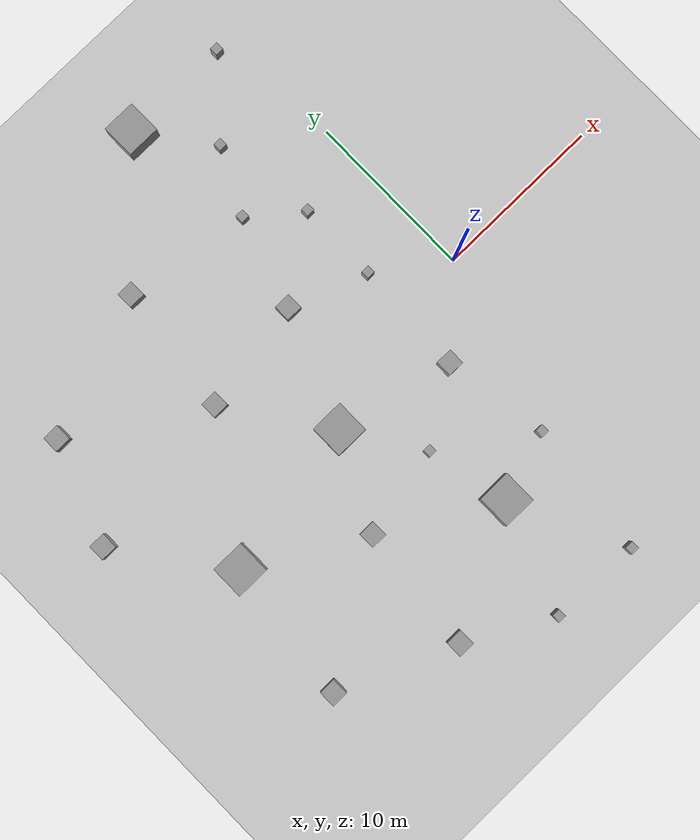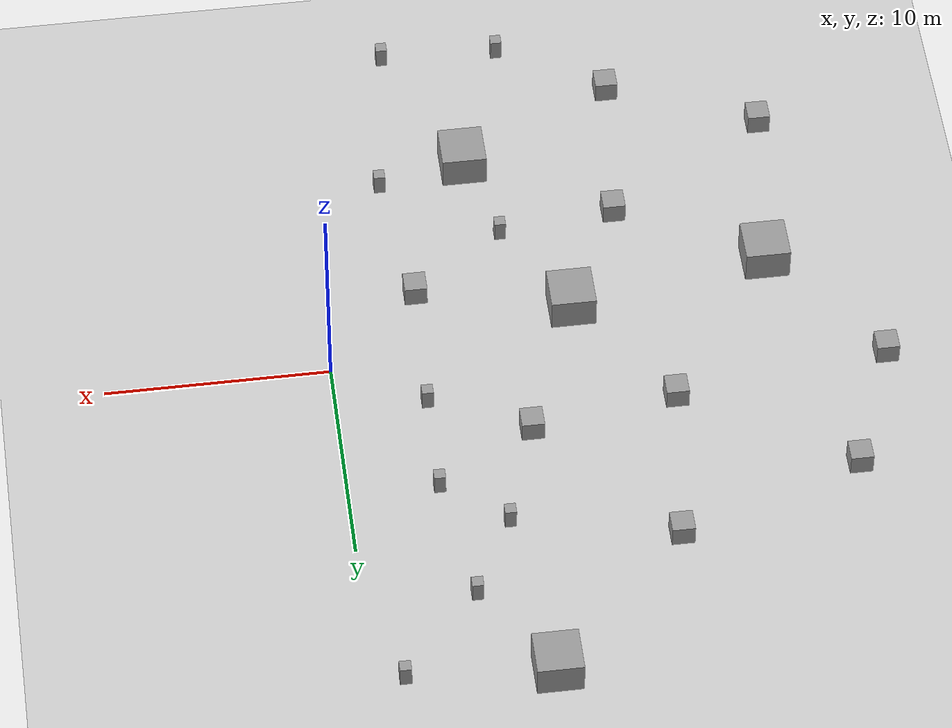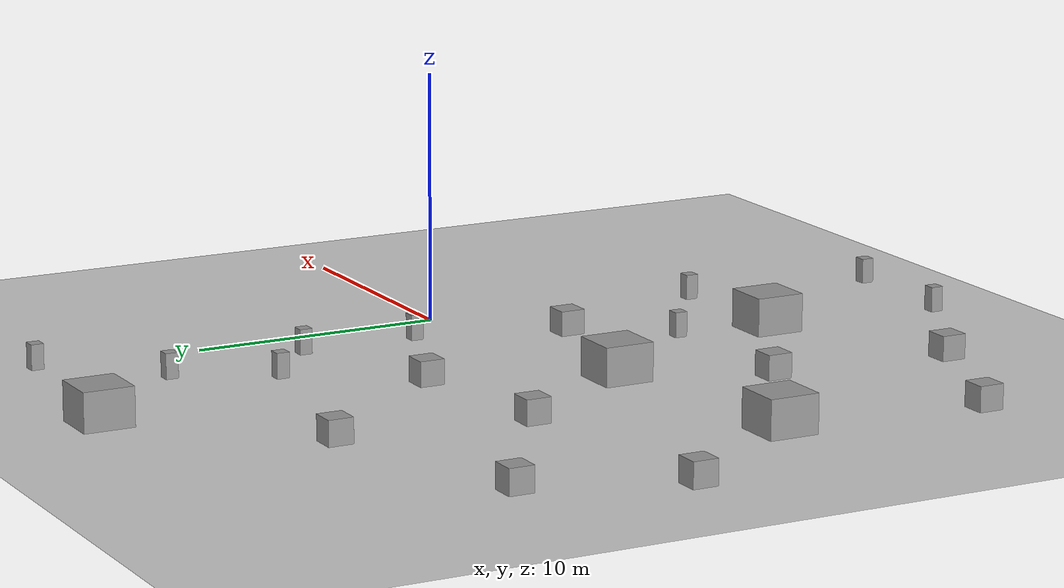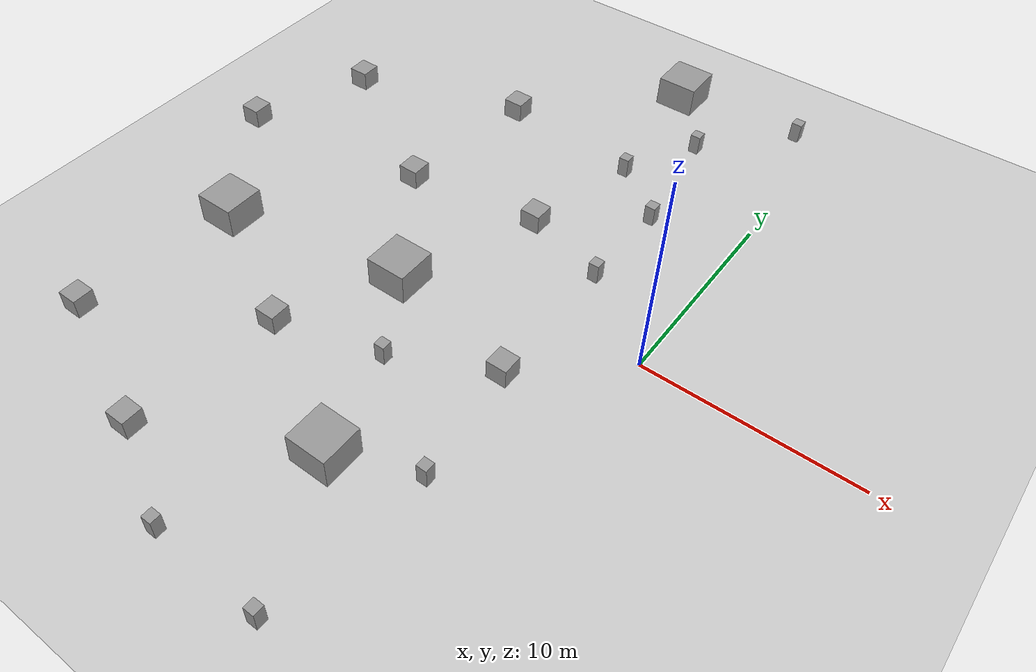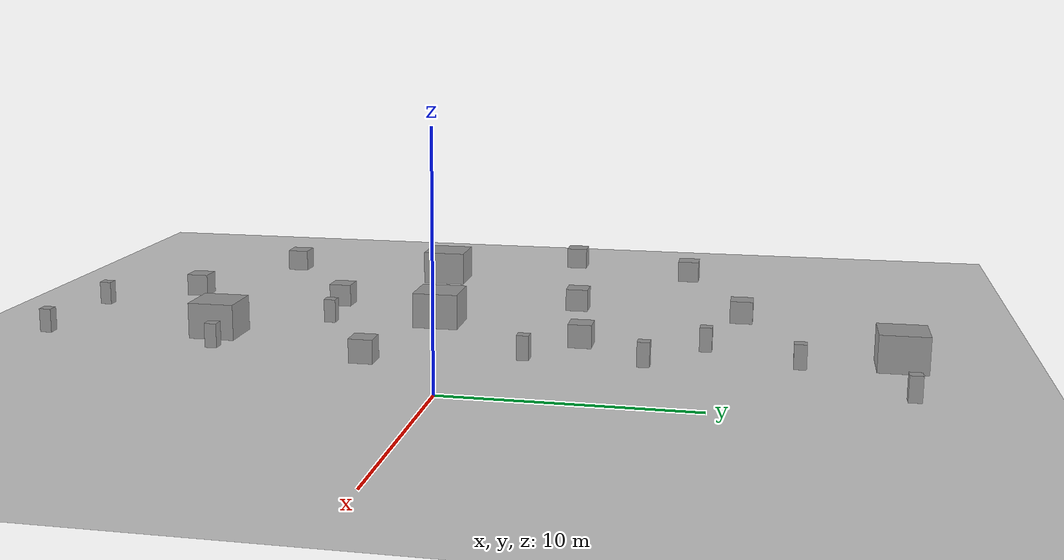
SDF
<sdf version="1.6">
 <world name="default">
  <model name="ground_plane">
   <static>1</static>
   <link name="link">
    <collision name="collision">
     <geometry><plane><normal>0 0 1</normal><size>100 100</size></plane></geometry>
     <surface>
      <contact><collide_bitmask>65535</collide_bitmask></contact>
      <friction><ode><mu>100</mu><mu2>50</mu2></ode></friction>
     </surface>
    </collision>
    <visual name="visual">
     <cast_shadows>0</cast_shadows>
     <geometry><plane><normal>0 0 1</normal><size>100 100</size></plane></geometry>
     <material>
      <script><uri>file://media/materials/scripts/gazebo.material</uri><name>Gazebo/Grey</name></script>
     </material>
    </visual>
   </link>
  </model>
  <model name="unit_box">
   <pose>-4.20212 -3.90314 0.5 0 -0 0</pose>
   <link name="link">
    <inertial>
     <mass>1</mass>
     <inertia>
      <ixx>0.166667</ixx>
      <ixy>0</ixy>
      <ixz>0</ixz>
      <iyy>0.166667</iyy>
      <iyz>0</iyz>
      <izz>0.166667</izz>
     </inertia>
    </inertial>
    <collision name="collision"><geometry><box><size>1 1 1</size></box></geometry></collision>
    <visual name="visual">
     <geometry><box><size>1 1 1</size></box></geometry>
     <material>
      <script><name>Gazebo/Grey</name><uri>file://media/materials/scripts/gazebo.material</uri></script>
     </material>
    </visual>
   </link>
  </model>
  <model name="unit_box_0">
   <pose>-8.36923 4.37364 0.5 -0 -0 -0</pose>
   <link name="link">
    <inertial>
     <mass>1</mass>
     <inertia>
      <ixx>0.166667</ixx>
      <ixy>0</ixy>
      <ixz>0</ixz>
      <iyy>0.166667</iyy>
      <iyz>0</iyz>
      <izz>0.166667</izz>
     </inertia>
    </inertial>
    <collision name="collision"><geometry><box><size>1 1 1</size></box></geometry></collision>
    <visual name="visual">
     <geometry><box><size>1 1 1</size></box></geometry>
     <material>
      <script><name>Gazebo/Grey</name><uri>file://media/materials/scripts/gazebo.material</uri></script>
     </material>
    </visual>
   </link>
  </model>
  <model name="0.5x0.5_cube_4_0">
   <link name="link">
    <inertial>
     <mass>1</mass>
     <inertia>
      <ixx>0.166667</ixx>
      <ixy>0</ixy>
      <ixz>0</ixz>
      <iyy>0.166667</iyy>
      <iyz>0</iyz>
      <izz>0.166667</izz>
     </inertia>
    </inertial>
    <visual name="visual">
     <geometry><box><size>0.5 0.5 1</size></box></geometry>
     <material>
      <script><name>Gazebo/Grey</name><uri>file://media/materials/scripts/gazebo.material</uri></script>
      <shader type="vertex"><normal_map>__default__</normal_map></shader>
      <ambient>0.3 0.3 0.3 1</ambient>
      <diffuse>0.7 0.7 0.7 1</diffuse>
      <specular>0.01 0.01 0.01 1</specular>
      <emissive>0 0 0 1</emissive>
     </material>
     <pose>0 0 0.5 0 -0 0</pose>
    </visual>
    <collision name="collision">
     <geometry><box><size>1 1 1</size></box></geometry>
     <surface>
      <friction>
       <ode><mu>1</mu><mu2>1</mu2><fdir1>0 0 0</fdir1><slip1>0</slip1><slip2>0</slip2></ode>
       <torsional>
        <coefficient>1</coefficient>
        <patch_radius>0</patch_radius>
        <surface_radius>0</surface_radius>
        <use_patch_radius>1</use_patch_radius>
        <ode><slip>0</slip></ode>
       </torsional>
      </friction>
      <bounce><restitution_coefficient>0</restitution_coefficient><threshold>1e+06</threshold></bounce>
      <contact>
       <collide_without_contact>0</collide_without_contact>
       <collide_without_contact_bitmask>1</collide_without_contact_bitmask>
       <collide_bitmask>1</collide_bitmask>
       <ode>
        <soft_cfm>0</soft_cfm>
        <soft_erp>0.2</soft_erp>
        <kp>1e+13</kp>
        <kd>1</kd>
        <max_vel>0.01</max_vel>
        <min_depth>0</min_depth>
       </ode>
       <bullet>
        <split_impulse>1</split_impulse>
        <split_impulse_penetration_threshold>-0.01</split_impulse_penetration_threshold>
        <soft_cfm>0</soft_cfm>
        <soft_erp>0.2</soft_erp>
        <kp>1e+13</kp>
        <kd>1</kd>
       </bullet>
      </contact>
     </surface>
    </collision>
   </link>
   <static>0</static>
   <pose>-3.97694 2.68308 0.5 0 -0 0</pose>
  </model>
  <model name="2x2_cube_0">
   <link name="link">
    <inertial>
     <mass>1</mass>
     <inertia>
      <ixx>0.166667</ixx>
      <ixy>0</ixy>
      <ixz>0</ixz>
      <iyy>0.166667</iyy>
      <iyz>0</iyz>
      <izz>0.166667</izz>
     </inertia>
    </inertial>
    <visual name="visual">
     <geometry><box><size>2 2 2</size></box></geometry>
     <material>
      <script><name>Gazebo/Grey</name><uri>file://media/materials/scripts/gazebo.material</uri></script>
      <shader type="vertex"><normal_map>__default__</normal_map></shader>
      <ambient>0.3 0.3 0.3 1</ambient>
      <diffuse>0.7 0.7 0.7 1</diffuse>
      <specular>0.01 0.01 0.01 1</specular>
      <emissive>0 0 0 1</emissive>
     </material>
    </visual>
    <collision name="collision">
     <geometry><box><size>1 1 1</size></box></geometry>
     <surface>
      <friction>
       <ode><mu>1</mu><mu2>1</mu2><fdir1>0 0 0</fdir1><slip1>0</slip1><slip2>0</slip2></ode>
       <torsional>
        <coefficient>1</coefficient>
        <patch_radius>0</patch_radius>
        <surface_radius>0</surface_radius>
        <use_patch_radius>1</use_patch_radius>
        <ode><slip>0</slip></ode>
       </torsional>
      </friction>
      <bounce><restitution_coefficient>0</restitution_coefficient><threshold>1e+06</threshold></bounce>
      <contact>
       <collide_without_contact>0</collide_without_contact>
       <collide_without_contact_bitmask>1</collide_without_contact_bitmask>
       <collide_bitmask>1</collide_bitmask>
       <ode>
        <soft_cfm>0</soft_cfm>
        <soft_erp>0.2</soft_erp>
        <kp>1e+13</kp>
        <kd>1</kd>
        <max_vel>0.01</max_vel>
        <min_depth>0</min_depth>
       </ode>
       <bullet>
        <split_impulse>1</split_impulse>
        <split_impulse_penetration_threshold>-0.01</split_impulse_penetration_threshold>
        <soft_cfm>0</soft_cfm>
        <soft_erp>0.2</soft_erp>
        <kp>1e+13</kp>
        <kd>1</kd>
       </bullet>
      </contact>
     </surface>
    </collision>
   </link>
   <static>0</static>
   <pose>-11.0166 -2.32935 0.5 0 -0 0</pose>
  </model>
  <model name="2x2_cube_1">
   <link name="link">
    <inertial>
     <mass>1</mass>
     <inertia>
      <ixx>0.166667</ixx>
      <ixy>0</ixy>
      <ixz>0</ixz>
      <iyy>0.166667</iyy>
      <iyz>0</iyz>
      <izz>0.166667</izz>
     </inertia>
    </inertial>
    <visual name="visual">
     <geometry><box><size>2 2 2</size></box></geometry>
     <material>
      <script><name>Gazebo/Grey</name><uri>file://media/materials/scripts/gazebo.material</uri></script>
      <shader type="vertex"><normal_map>__default__</normal_map></shader>
      <ambient>0.3 0.3 0.3 1</ambient>
      <diffuse>0.7 0.7 0.7 1</diffuse>
      <specular>0.01 0.01 0.01 1</specular>
      <emissive>0 0 0 1</emissive>
     </material>
    </visual>
    <collision name="collision">
     <geometry><box><size>1 1 1</size></box></geometry>
     <surface>
      <friction>
       <ode><mu>1</mu><mu2>1</mu2><fdir1>0 0 0</fdir1><slip1>0</slip1><slip2>0</slip2></ode>
       <torsional>
        <coefficient>1</coefficient>
        <patch_radius>0</patch_radius>
        <surface_radius>0</surface_radius>
        <use_patch_radius>1</use_patch_radius>
        <ode><slip>0</slip></ode>
       </torsional>
      </friction>
      <bounce><restitution_coefficient>0</restitution_coefficient><threshold>1e+06</threshold></bounce>
      <contact>
       <collide_without_contact>0</collide_without_contact>
       <collide_without_contact_bitmask>1</collide_without_contact_bitmask>
       <collide_bitmask>1</collide_bitmask>
       <ode>
        <soft_cfm>0</soft_cfm>
        <soft_erp>0.2</soft_erp>
        <kp>1e+13</kp>
        <kd>1</kd>
        <max_vel>0.01</max_vel>
        <min_depth>0</min_depth>
       </ode>
       <bullet>
        <split_impulse>1</split_impulse>
        <split_impulse_penetration_threshold>-0.01</split_impulse_penetration_threshold>
        <soft_cfm>0</soft_cfm>
        <soft_erp>0.2</soft_erp>
        <kp>1e+13</kp>
        <kd>1</kd>
       </bullet>
      </contact>
     </surface>
    </collision>
   </link>
   <static>0</static>
   <pose>-7.2358 -11.2675 0.5 0 -0 0</pose>
  </model>
  <model name="0.5x0.5_cube_4_1">
   <link name="link">
    <inertial>
     <mass>1</mass>
     <inertia>
      <ixx>0.166667</ixx>
      <ixy>0</ixy>
      <ixz>0</ixz>
      <iyy>0.166667</iyy>
      <iyz>0</iyz>
      <izz>0.166667</izz>
     </inertia>
    </inertial>
    <visual name="visual">
     <geometry><box><size>0.5 0.5 1</size></box></geometry>
     <material>
      <script><name>Gazebo/Grey</name><uri>file://media/materials/scripts/gazebo.material</uri></script>
      <shader type="vertex"><normal_map>__default__</normal_map></shader>
      <ambient>0.3 0.3 0.3 1</ambient>
      <diffuse>0.7 0.7 0.7 1</diffuse>
      <specular>0.01 0.01 0.01 1</specular>
      <emissive>0 0 0 1</emissive>
     </material>
     <pose>0 0 0.5 0 -0 0</pose>
    </visual>
    <collision name="collision">
     <geometry><box><size>1 1 1</size></box></geometry>
     <surface>
      <friction>
       <ode><mu>1</mu><mu2>1</mu2><fdir1>0 0 0</fdir1><slip1>0</slip1><slip2>0</slip2></ode>
       <torsional>
        <coefficient>1</coefficient>
        <patch_radius>0</patch_radius>
        <surface_radius>0</surface_radius>
        <use_patch_radius>1</use_patch_radius>
        <ode><slip>0</slip></ode>
       </torsional>
      </friction>
      <bounce><restitution_coefficient>0</restitution_coefficient><threshold>1e+06</threshold></bounce>
      <contact>
       <collide_without_contact>0</collide_without_contact>
       <collide_without_contact_bitmask>1</collide_without_contact_bitmask>
       <collide_bitmask>1</collide_bitmask>
       <ode>
        <soft_cfm>0</soft_cfm>
        <soft_erp>0.2</soft_erp>
        <kp>1e+13</kp>
        <kd>1</kd>
        <max_vel>0.01</max_vel>
        <min_depth>0</min_depth>
       </ode>
       <bullet>
        <split_impulse>1</split_impulse>
        <split_impulse_penetration_threshold>-0.01</split_impulse_penetration_threshold>
        <soft_cfm>0</soft_cfm>
        <soft_erp>0.2</soft_erp>
        <kp>1e+13</kp>
        <kd>1</kd>
       </bullet>
      </contact>
     </surface>
    </collision>
   </link>
   <static>0</static>
   <pose>-4.25791 -17.7398 0.5 0 -0 0</pose>
  </model>
  <model name="0.5x0.5_cube_4_2">
   <link name="link">
    <inertial>
     <mass>1</mass>
     <inertia>
      <ixx>0.166667</ixx>
      <ixy>0</ixy>
      <ixz>0</ixz>
      <iyy>0.166667</iyy>
      <iyz>0</iyz>
      <izz>0.166667</izz>
     </inertia>
    </inertial>
    <visual name="visual">
     <geometry><box><size>0.5 0.5 1</size></box></geometry>
     <material>
      <script><name>Gazebo/Grey</name><uri>file://media/materials/scripts/gazebo.material</uri></script>
      <shader type="vertex"><normal_map>__default__</normal_map></shader>
      <ambient>0.3 0.3 0.3 1</ambient>
      <diffuse>0.7 0.7 0.7 1</diffuse>
      <specular>0.01 0.01 0.01 1</specular>
      <emissive>0 0 0 1</emissive>
     </material>
     <pose>0 0 0.5 0 -0 0</pose>
    </visual>
    <collision name="collision">
     <geometry><box><size>1 1 1</size></box></geometry>
     <surface>
      <friction>
       <ode><mu>1</mu><mu2>1</mu2><fdir1>0 0 0</fdir1><slip1>0</slip1><slip2>0</slip2></ode>
       <torsional>
        <coefficient>1</coefficient>
        <patch_radius>0</patch_radius>
        <surface_radius>0</surface_radius>
        <use_patch_radius>1</use_patch_radius>
        <ode><slip>0</slip></ode>
       </torsional>
      </friction>
      <bounce><restitution_coefficient>0</restitution_coefficient><threshold>1e+06</threshold></bounce>
      <contact>
       <collide_without_contact>0</collide_without_contact>
       <collide_without_contact_bitmask>1</collide_without_contact_bitmask>
       <collide_bitmask>1</collide_bitmask>
       <ode>
        <soft_cfm>0</soft_cfm>
        <soft_erp>0.2</soft_erp>
        <kp>1e+13</kp>
        <kd>1</kd>
        <max_vel>0.01</max_vel>
        <min_depth>0</min_depth>
       </ode>
       <bullet>
        <split_impulse>1</split_impulse>
        <split_impulse_penetration_threshold>-0.01</split_impulse_penetration_threshold>
        <soft_cfm>0</soft_cfm>
        <soft_erp>0.2</soft_erp>
        <kp>1e+13</kp>
        <kd>1</kd>
       </bullet>
      </contact>
     </surface>
    </collision>
   </link>
   <static>0</static>
   <pose>-3.2947 -9.98565 0.5 0 -0 0</pose>
  </model>
  <model name="0.5x0.5_cube_4_3">
   <link name="link">
    <inertial>
     <mass>1</mass>
     <inertia>
      <ixx>0.166667</ixx>
      <ixy>0</ixy>
      <ixz>0</ixz>
      <iyy>0.166667</iyy>
      <iyz>0</iyz>
      <izz>0.166667</izz>
     </inertia>
    </inertial>
    <visual name="visual">
     <geometry><box><size>0.5 0.5 1</size></box></geometry>
     <material>
      <script><name>Gazebo/Grey</name><uri>file://media/materials/scripts/gazebo.material</uri></script>
      <shader type="vertex"><normal_map>__default__</normal_map></shader>
      <ambient>0.3 0.3 0.3 1</ambient>
      <diffuse>0.7 0.7 0.7 1</diffuse>
      <specular>0.01 0.01 0.01 1</specular>
      <emissive>0 0 0 1</emissive>
     </material>
     <pose>0 0 0.5 0 -0 0</pose>
    </visual>
    <collision name="collision">
     <geometry><box><size>1 1 1</size></box></geometry>
     <surface>
      <friction>
       <ode><mu>1</mu><mu2>1</mu2><fdir1>0 0 0</fdir1><slip1>0</slip1><slip2>0</slip2></ode>
       <torsional>
        <coefficient>1</coefficient>
        <patch_radius>0</patch_radius>
        <surface_radius>0</surface_radius>
        <use_patch_radius>1</use_patch_radius>
        <ode><slip>0</slip></ode>
       </torsional>
      </friction>
      <bounce><restitution_coefficient>0</restitution_coefficient><threshold>1e+06</threshold></bounce>
      <contact>
       <collide_without_contact>0</collide_without_contact>
       <collide_without_contact_bitmask>1</collide_without_contact_bitmask>
       <collide_bitmask>1</collide_bitmask>
       <ode>
        <soft_cfm>0</soft_cfm>
        <soft_erp>0.2</soft_erp>
        <kp>1e+13</kp>
        <kd>1</kd>
        <max_vel>0.01</max_vel>
        <min_depth>0</min_depth>
       </ode>
       <bullet>
        <split_impulse>1</split_impulse>
        <split_impulse_penetration_threshold>-0.01</split_impulse_penetration_threshold>
        <soft_cfm>0</soft_cfm>
        <soft_erp>0.2</soft_erp>
        <kp>1e+13</kp>
        <kd>1</kd>
       </bullet>
      </contact>
     </surface>
    </collision>
   </link>
   <static>0</static>
   <pose>-8.35221 -6.53735 0.5 0 -0 0</pose>
  </model>
  <model name="0.5x0.5_cube_4_4">
   <link name="link">
    <inertial>
     <mass>1</mass>
     <inertia>
      <ixx>0.166667</ixx>
      <ixy>0</ixy>
      <ixz>0</ixz>
      <iyy>0.166667</iyy>
      <iyz>0</iyz>
      <izz>0.166667</izz>
     </inertia>
    </inertial>
    <visual name="visual">
     <geometry><box><size>0.5 0.5 1</size></box></geometry>
     <material>
      <script><name>Gazebo/Grey</name><uri>file://media/materials/scripts/gazebo.material</uri></script>
      <shader type="vertex"><normal_map>__default__</normal_map></shader>
      <ambient>0.3 0.3 0.3 1</ambient>
      <diffuse>0.7 0.7 0.7 1</diffuse>
      <specular>0.01 0.01 0.01 1</specular>
      <emissive>0 0 0 1</emissive>
     </material>
     <pose>0 0 0.5 0 -0 0</pose>
    </visual>
    <collision name="collision">
     <geometry><box><size>1 1 1</size></box></geometry>
     <surface>
      <friction>
       <ode><mu>1</mu><mu2>1</mu2><fdir1>0 0 0</fdir1><slip1>0</slip1><slip2>0</slip2></ode>
       <torsional>
        <coefficient>1</coefficient>
        <patch_radius>0</patch_radius>
        <surface_radius>0</surface_radius>
        <use_patch_radius>1</use_patch_radius>
        <ode><slip>0</slip></ode>
       </torsional>
      </friction>
      <bounce><restitution_coefficient>0</restitution_coefficient><threshold>1e+06</threshold></bounce>
      <contact>
       <collide_without_contact>0</collide_without_contact>
       <collide_without_contact_bitmask>1</collide_without_contact_bitmask>
       <collide_bitmask>1</collide_bitmask>
       <ode>
        <soft_cfm>0</soft_cfm>
        <soft_erp>0.2</soft_erp>
        <kp>1e+13</kp>
        <kd>1</kd>
        <max_vel>0.01</max_vel>
        <min_depth>0</min_depth>
       </ode>
       <bullet>
        <split_impulse>1</split_impulse>
        <split_impulse_penetration_threshold>-0.01</split_impulse_penetration_threshold>
        <soft_cfm>0</soft_cfm>
        <soft_erp>0.2</soft_erp>
        <kp>1e+13</kp>
        <kd>1</kd>
       </bullet>
      </contact>
     </surface>
    </collision>
   </link>
   <static>0</static>
   <pose>-6.72183 9.63011 0.5 0 -0 0</pose>
  </model>
  <model name="2x2_cube_5">
   <link name="link">
    <inertial>
     <mass>1</mass>
     <inertia>
      <ixx>0.166667</ixx>
      <ixy>0</ixy>
      <ixz>0</ixz>
      <iyy>0.166667</iyy>
      <iyz>0</iyz>
      <izz>0.166667</izz>
     </inertia>
    </inertial>
    <visual name="visual">
     <geometry><box><size>2 2 2</size></box></geometry>
     <material>
      <script><name>Gazebo/Grey</name><uri>file://media/materials/scripts/gazebo.material</uri></script>
      <shader type="vertex"><normal_map>__default__</normal_map></shader>
      <ambient>0.3 0.3 0.3 1</ambient>
      <diffuse>0.7 0.7 0.7 1</diffuse>
      <specular>0.01 0.01 0.01 1</specular>
      <emissive>0 0 0 1</emissive>
     </material>
    </visual>
    <collision name="collision">
     <geometry><box><size>1 1 1</size></box></geometry>
     <surface>
      <friction>
       <ode><mu>1</mu><mu2>1</mu2><fdir1>0 0 0</fdir1><slip1>0</slip1><slip2>0</slip2></ode>
       <torsional>
        <coefficient>1</coefficient>
        <patch_radius>0</patch_radius>
        <surface_radius>0</surface_radius>
        <use_patch_radius>1</use_patch_radius>
        <ode><slip>0</slip></ode>
       </torsional>
      </friction>
      <bounce><restitution_coefficient>0</restitution_coefficient><threshold>1e+06</threshold></bounce>
      <contact>
       <collide_without_contact>0</collide_without_contact>
       <collide_without_contact_bitmask>1</collide_without_contact_bitmask>
       <collide_bitmask>1</collide_bitmask>
       <ode>
        <soft_cfm>0</soft_cfm>
        <soft_erp>0.2</soft_erp>
        <kp>1e+13</kp>
        <kd>1</kd>
        <max_vel>0.01</max_vel>
        <min_depth>0</min_depth>
       </ode>
       <bullet>
        <split_impulse>1</split_impulse>
        <split_impulse_penetration_threshold>-0.01</split_impulse_penetration_threshold>
        <soft_cfm>0</soft_cfm>
        <soft_erp>0.2</soft_erp>
        <kp>1e+13</kp>
        <kd>1</kd>
       </bullet>
      </contact>
     </surface>
    </collision>
   </link>
   <static>0</static>
   <pose>-7.73173 17.3042 0.5 0 -0 0</pose>
  </model>
  <model name="unit_box_5">
   <pose>-13.6613 -7.61768 0.5 0 -0 0</pose>
   <link name="link">
    <inertial>
     <mass>1</mass>
     <inertia>
      <ixx>0.166667</ixx>
      <ixy>0</ixy>
      <ixz>0</ixz>
      <iyy>0.166667</iyy>
      <iyz>0</iyz>
      <izz>0.166667</izz>
     </inertia>
    </inertial>
    <collision name="collision"><geometry><box><size>1 1 1</size></box></geometry></collision>
    <visual name="visual">
     <geometry><box><size>1 1 1</size></box></geometry>
     <material>
      <script><name>Gazebo/Grey</name><uri>file://media/materials/scripts/gazebo.material</uri></script>
     </material>
    </visual>
   </link>
  </model>
  <model name="unit_box_6">
   <pose>-14.8999 3.34623 0.5 -0 -0 -0</pose>
   <link name="link">
    <inertial>
     <mass>1</mass>
     <inertia>
      <ixx>0.166667</ixx>
      <ixy>0</ixy>
      <ixz>0</ixz>
      <iyy>0.166667</iyy>
      <iyz>0</iyz>
      <izz>0.166667</izz>
     </inertia>
    </inertial>
    <collision name="collision"><geometry><box><size>1 1 1</size></box></geometry></collision>
    <visual name="visual">
     <geometry><box><size>1 1 1</size></box></geometry>
     <material>
      <script><name>Gazebo/Grey</name><uri>file://media/materials/scripts/gazebo.material</uri></script>
     </material>
    </visual>
   </link>
  </model>
  <model name="unit_box_7">
   <pose>-14.0039 10.8372 0.5 0 -0 0</pose>
   <link name="link">
    <inertial>
     <mass>1</mass>
     <inertia>
      <ixx>0.166667</ixx>
      <ixy>0</ixy>
      <ixz>0</ixz>
      <iyy>0.166667</iyy>
      <iyz>0</iyz>
      <izz>0.166667</izz>
     </inertia>
    </inertial>
    <collision name="collision"><geometry><box><size>1 1 1</size></box></geometry></collision>
    <visual name="visual">
     <geometry><box><size>1 1 1</size></box></geometry>
     <material>
      <script><name>Gazebo/Grey</name><uri>file://media/materials/scripts/gazebo.material</uri></script>
     </material>
    </visual>
   </link>
  </model>
  <model name="unit_box_10">
   <pose>-14.3559 -14.9967 0.5 -0 -0 -0</pose>
   <link name="link">
    <inertial>
     <mass>1</mass>
     <inertia>
      <ixx>0.166667</ixx>
      <ixy>0</ixy>
      <ixz>0</ixz>
      <iyy>0.166667</iyy>
      <iyz>0</iyz>
      <izz>0.166667</izz>
     </inertia>
    </inertial>
    <collision name="collision"><geometry><box><size>1 1 1</size></box></geometry></collision>
    <visual name="visual">
     <geometry><box><size>1 1 1</size></box></geometry>
     <material>
      <script><name>Gazebo/Grey</name><uri>file://media/materials/scripts/gazebo.material</uri></script>
     </material>
    </visual>
   </link>
  </model>
  <model name="2x2_cube_8">
   <link name="link">
    <inertial>
     <mass>1</mass>
     <inertia>
      <ixx>0.166667</ixx>
      <ixy>0</ixy>
      <ixz>0</ixz>
      <iyy>0.166667</iyy>
      <iyz>0</iyz>
      <izz>0.166667</izz>
     </inertia>
    </inertial>
    <visual name="visual">
     <geometry><box><size>2 2 2</size></box></geometry>
     <material>
      <script><name>Gazebo/Grey</name><uri>file://media/materials/scripts/gazebo.material</uri></script>
      <shader type="vertex"><normal_map>__default__</normal_map></shader>
      <ambient>0.3 0.3 0.3 1</ambient>
      <diffuse>0.7 0.7 0.7 1</diffuse>
      <specular>0.01 0.01 0.01 1</specular>
      <emissive>0 0 0 1</emissive>
     </material>
    </visual>
    <collision name="collision">
     <geometry><box><size>1 1 1</size></box></geometry>
     <surface>
      <friction>
       <ode><mu>1</mu><mu2>1</mu2><fdir1>0 0 0</fdir1><slip1>0</slip1><slip2>0</slip2></ode>
       <torsional>
        <coefficient>1</coefficient>
        <patch_radius>0</patch_radius>
        <surface_radius>0</surface_radius>
        <use_patch_radius>1</use_patch_radius>
        <ode><slip>0</slip></ode>
       </torsional>
      </friction>
      <bounce><restitution_coefficient>0</restitution_coefficient><threshold>1e+06</threshold></bounce>
      <contact>
       <collide_without_contact>0</collide_without_contact>
       <collide_without_contact_bitmask>1</collide_without_contact_bitmask>
       <collide_bitmask>1</collide_bitmask>
       <ode>
        <soft_cfm>0</soft_cfm>
        <soft_erp>0.2</soft_erp>
        <kp>1e+13</kp>
        <kd>1</kd>
        <max_vel>0.01</max_vel>
        <min_depth>0</min_depth>
       </ode>
       <bullet>
        <split_impulse>1</split_impulse>
        <split_impulse_penetration_threshold>-0.01</split_impulse_penetration_threshold>
        <soft_cfm>0</soft_cfm>
        <soft_erp>0.2</soft_erp>
        <kp>1e+13</kp>
        <kd>1</kd>
       </bullet>
      </contact>
     </surface>
    </collision>
   </link>
   <static>0</static>
   <pose>-20.0176 -4.00093 0.5 0 -0 0</pose>
  </model>
  <model name="unit_box_11">
   <pose>-21.0147 -12.1472 0.5 -0 -0 -0</pose>
   <link name="link">
    <inertial>
     <mass>1</mass>
     <inertia>
      <ixx>0.166667</ixx>
      <ixy>0</ixy>
      <ixz>0</ixz>
      <iyy>0.166667</iyy>
      <iyz>0</iyz>
      <izz>0.166667</izz>
     </inertia>
    </inertial>
    <collision name="collision"><geometry><box><size>1 1 1</size></box></geometry></collision>
    <visual name="visual">
     <geometry><box><size>1 1 1</size></box></geometry>
     <material>
      <script><name>Gazebo/Grey</name><uri>file://media/materials/scripts/gazebo.material</uri></script>
     </material>
    </visual>
   </link>
  </model>
  <model name="unit_box_12">
   <pose>-22.2635 7.96713 0.5 -0 -0 -0</pose>
   <link name="link">
    <inertial>
     <mass>1</mass>
     <inertia>
      <ixx>0.166667</ixx>
      <ixy>0</ixy>
      <ixz>0</ixz>
      <iyy>0.166667</iyy>
      <iyz>0</iyz>
      <izz>0.166667</izz>
     </inertia>
    </inertial>
    <collision name="collision"><geometry><box><size>1 1 1</size></box></geometry></collision>
    <visual name="visual">
     <geometry><box><size>1 1 1</size></box></geometry>
     <material>
      <script><name>Gazebo/Grey</name><uri>file://media/materials/scripts/gazebo.material</uri></script>
     </material>
    </visual>
   </link>
  </model>
  <model name="0.5x0.5_cube_4_9">
   <link name="link">
    <inertial>
     <mass>1</mass>
     <inertia>
      <ixx>0.166667</ixx>
      <ixy>0</ixy>
      <ixz>0</ixz>
      <iyy>0.166667</iyy>
      <iyz>0</iyz>
      <izz>0.166667</izz>
     </inertia>
    </inertial>
    <visual name="visual">
     <geometry><box><size>0.5 0.5 1</size></box></geometry>
     <material>
      <script><name>Gazebo/Grey</name><uri>file://media/materials/scripts/gazebo.material</uri></script>
      <shader type="vertex"><normal_map>__default__</normal_map></shader>
      <ambient>0.3 0.3 0.3 1</ambient>
      <diffuse>0.7 0.7 0.7 1</diffuse>
      <specular>0.01 0.01 0.01 1</specular>
      <emissive>0 0 0 1</emissive>
     </material>
     <pose>0 0 0.5 0 -0 0</pose>
    </visual>
    <collision name="collision">
     <geometry><box><size>1 1 1</size></box></geometry>
     <surface>
      <friction>
       <ode><mu>1</mu><mu2>1</mu2><fdir1>0 0 0</fdir1><slip1>0</slip1><slip2>0</slip2></ode>
       <torsional>
        <coefficient>1</coefficient>
        <patch_radius>0</patch_radius>
        <surface_radius>0</surface_radius>
        <use_patch_radius>1</use_patch_radius>
        <ode><slip>0</slip></ode>
       </torsional>
      </friction>
      <bounce><restitution_coefficient>0</restitution_coefficient><threshold>1e+06</threshold></bounce>
      <contact>
       <collide_without_contact>0</collide_without_contact>
       <collide_without_contact_bitmask>1</collide_without_contact_bitmask>
       <collide_bitmask>1</collide_bitmask>
       <ode>
        <soft_cfm>0</soft_cfm>
        <soft_erp>0.2</soft_erp>
        <kp>1e+13</kp>
        <kd>1</kd>
        <max_vel>0.01</max_vel>
        <min_depth>0</min_depth>
       </ode>
       <bullet>
        <split_impulse>1</split_impulse>
        <split_impulse_penetration_threshold>-0.01</split_impulse_penetration_threshold>
        <soft_cfm>0</soft_cfm>
        <soft_erp>0.2</soft_erp>
        <kp>1e+13</kp>
        <kd>1</kd>
       </bullet>
      </contact>
     </surface>
    </collision>
   </link>
   <static>0</static>
   <pose>-1.30497 17.2705 0.5 0 -0 0</pose>
  </model>
  <model name="0.5x0.5_cube_4_10">
   <link name="link">
    <inertial>
     <mass>1</mass>
     <inertia>
      <ixx>0.166667</ixx>
      <ixy>0</ixy>
      <ixz>0</ixz>
      <iyy>0.166667</iyy>
      <iyz>0</iyz>
      <izz>0.166667</izz>
     </inertia>
    </inertial>
    <visual name="visual">
     <geometry><box><size>0.5 0.5 1</size></box></geometry>
     <material>
      <script><name>Gazebo/Grey</name><uri>file://media/materials/scripts/gazebo.material</uri></script>
      <shader type="vertex"><normal_map>__default__</normal_map></shader>
      <ambient>0.3 0.3 0.3 1</ambient>
      <diffuse>0.7 0.7 0.7 1</diffuse>
      <specular>0.01 0.01 0.01 1</specular>
      <emissive>0 0 0 1</emissive>
     </material>
     <pose>0 0 0.5 0 -0 0</pose>
    </visual>
    <collision name="collision">
     <geometry><box><size>1 1 1</size></box></geometry>
     <surface>
      <friction>
       <ode><mu>1</mu><mu2>1</mu2><fdir1>0 0 0</fdir1><slip1>0</slip1><slip2>0</slip2></ode>
       <torsional>
        <coefficient>1</coefficient>
        <patch_radius>0</patch_radius>
        <surface_radius>0</surface_radius>
        <use_patch_radius>1</use_patch_radius>
        <ode><slip>0</slip></ode>
       </torsional>
      </friction>
      <bounce><restitution_coefficient>0</restitution_coefficient><threshold>1e+06</threshold></bounce>
      <contact>
       <collide_without_contact>0</collide_without_contact>
       <collide_without_contact_bitmask>1</collide_without_contact_bitmask>
       <collide_bitmask>1</collide_bitmask>
       <ode>
        <soft_cfm>0</soft_cfm>
        <soft_erp>0.2</soft_erp>
        <kp>1e+13</kp>
        <kd>1</kd>
        <max_vel>0.01</max_vel>
        <min_depth>0</min_depth>
       </ode>
       <bullet>
        <split_impulse>1</split_impulse>
        <split_impulse_penetration_threshold>-0.01</split_impulse_penetration_threshold>
        <soft_cfm>0</soft_cfm>
        <soft_erp>0.2</soft_erp>
        <kp>1e+13</kp>
        <kd>1</kd>
       </bullet>
      </contact>
     </surface>
    </collision>
   </link>
   <static>0</static>
   <pose>-3.94223 7.39896 0.5 0 -0 0</pose>
  </model>
  <model name="0.5x0.5_cube_4_11">
   <link name="link">
    <inertial>
     <mass>1</mass>
     <inertia>
      <ixx>0.166667</ixx>
      <ixy>0</ixy>
      <ixz>0</ixz>
      <iyy>0.166667</iyy>
      <iyz>0</iyz>
      <izz>0.166667</izz>
     </inertia>
    </inertial>
    <visual name="visual">
     <geometry><box><size>0.5 0.5 1</size></box></geometry>
     <material>
      <script><name>Gazebo/Grey</name><uri>file://media/materials/scripts/gazebo.material</uri></script>
      <shader type="vertex"><normal_map>__default__</normal_map></shader>
      <ambient>0.3 0.3 0.3 1</ambient>
      <diffuse>0.7 0.7 0.7 1</diffuse>
      <specular>0.01 0.01 0.01 1</specular>
      <emissive>0 0 0 1</emissive>
     </material>
     <pose>0 0 0.5 0 -0 0</pose>
    </visual>
    <collision name="collision">
     <geometry><box><size>1 1 1</size></box></geometry>
     <surface>
      <friction>
       <ode><mu>1</mu><mu2>1</mu2><fdir1>0 0 0</fdir1><slip1>0</slip1><slip2>0</slip2></ode>
       <torsional>
        <coefficient>1</coefficient>
        <patch_radius>0</patch_radius>
        <surface_radius>0</surface_radius>
        <use_patch_radius>1</use_patch_radius>
        <ode><slip>0</slip></ode>
       </torsional>
      </friction>
      <bounce><restitution_coefficient>0</restitution_coefficient><threshold>1e+06</threshold></bounce>
      <contact>
       <collide_without_contact>0</collide_without_contact>
       <collide_without_contact_bitmask>1</collide_without_contact_bitmask>
       <collide_bitmask>1</collide_bitmask>
       <ode>
        <soft_cfm>0</soft_cfm>
        <soft_erp>0.2</soft_erp>
        <kp>1e+13</kp>
        <kd>1</kd>
        <max_vel>0.01</max_vel>
        <min_depth>0</min_depth>
       </ode>
       <bullet>
        <split_impulse>1</split_impulse>
        <split_impulse_penetration_threshold>-0.01</split_impulse_penetration_threshold>
        <soft_cfm>0</soft_cfm>
        <soft_erp>0.2</soft_erp>
        <kp>1e+13</kp>
        <kd>1</kd>
       </bullet>
      </contact>
     </surface>
    </collision>
   </link>
   <static>0</static>
   <pose>-4.8459 13.3086 0.5 0 -0 0</pose>
  </model>
  <model name="0.5x0.5_cube_4_12">
   <link name="link">
    <inertial>
     <mass>1</mass>
     <inertia>
      <ixx>0.166667</ixx>
      <ixy>0</ixy>
      <ixz>0</ixz>
      <iyy>0.166667</iyy>
      <iyz>0</iyz>
      <izz>0.166667</izz>
     </inertia>
    </inertial>
    <visual name="visual">
     <geometry><box><size>0.5 0.5 1</size></box></geometry>
     <material>
      <script><name>Gazebo/Grey</name><uri>file://media/materials/scripts/gazebo.material</uri></script>
      <shader type="vertex"><normal_map>__default__</normal_map></shader>
      <ambient>0.3 0.3 0.3 1</ambient>
      <diffuse>0.7 0.7 0.7 1</diffuse>
      <specular>0.01 0.01 0.01 1</specular>
      <emissive>0 0 0 1</emissive>
     </material>
     <pose>0 0 0.5 0 -0 0</pose>
    </visual>
    <collision name="collision">
     <geometry><box><size>1 1 1</size></box></geometry>
     <surface>
      <friction>
       <ode><mu>1</mu><mu2>1</mu2><fdir1>0 0 0</fdir1><slip1>0</slip1><slip2>0</slip2></ode>
       <torsional>
        <coefficient>1</coefficient>
        <patch_radius>0</patch_radius>
        <surface_radius>0</surface_radius>
        <use_patch_radius>1</use_patch_radius>
        <ode><slip>0</slip></ode>
       </torsional>
      </friction>
      <bounce><restitution_coefficient>0</restitution_coefficient><threshold>1e+06</threshold></bounce>
      <contact>
       <collide_without_contact>0</collide_without_contact>
       <collide_without_contact_bitmask>1</collide_without_contact_bitmask>
       <collide_bitmask>1</collide_bitmask>
       <ode>
        <soft_cfm>0</soft_cfm>
        <soft_erp>0.2</soft_erp>
        <kp>1e+13</kp>
        <kd>1</kd>
        <max_vel>0.01</max_vel>
        <min_depth>0</min_depth>
       </ode>
       <bullet>
        <split_impulse>1</split_impulse>
        <split_impulse_penetration_threshold>-0.01</split_impulse_penetration_threshold>
        <soft_cfm>0</soft_cfm>
        <soft_erp>0.2</soft_erp>
        <kp>1e+13</kp>
        <kd>1</kd>
       </bullet>
      </contact>
     </surface>
    </collision>
   </link>
   <static>0</static>
   <pose>-9.57781 -17.5631 0.5 0 -0 0</pose>
  </model>
  <model name="unit_box_14">
   <pose>-24.4819 2.02605 0.5 -0 -0 -0</pose>
   <link name="link">
    <inertial>
     <mass>1</mass>
     <inertia>
      <ixx>0.166667</ixx>
      <ixy>0</ixy>
      <ixz>0</ixz>
      <iyy>0.166667</iyy>
      <iyz>0</iyz>
      <izz>0.166667</izz>
     </inertia>
    </inertial>
    <collision name="collision"><geometry><box><size>1 1 1</size></box></geometry></collision>
    <visual name="visual">
     <geometry><box><size>1 1 1</size></box></geometry>
     <material>
      <script><name>Gazebo/Grey</name><uri>file://media/materials/scripts/gazebo.material</uri></script>
     </material>
    </visual>
   </link>
  </model>
 </world>
</sdf>
